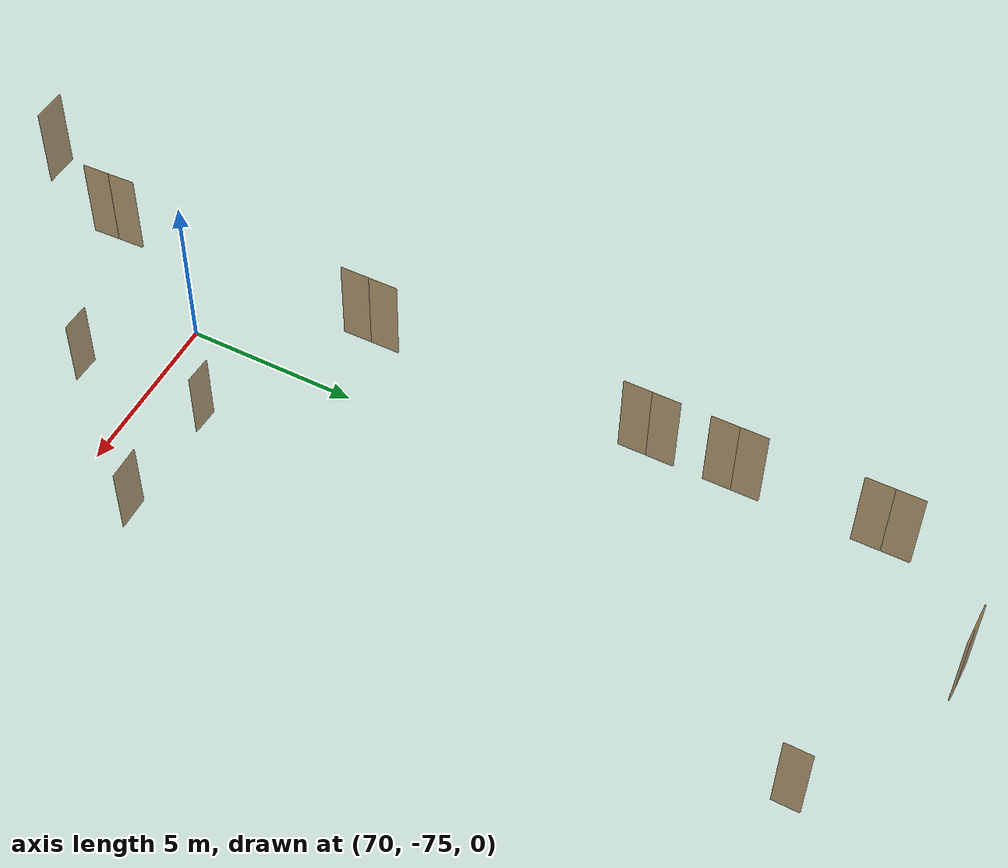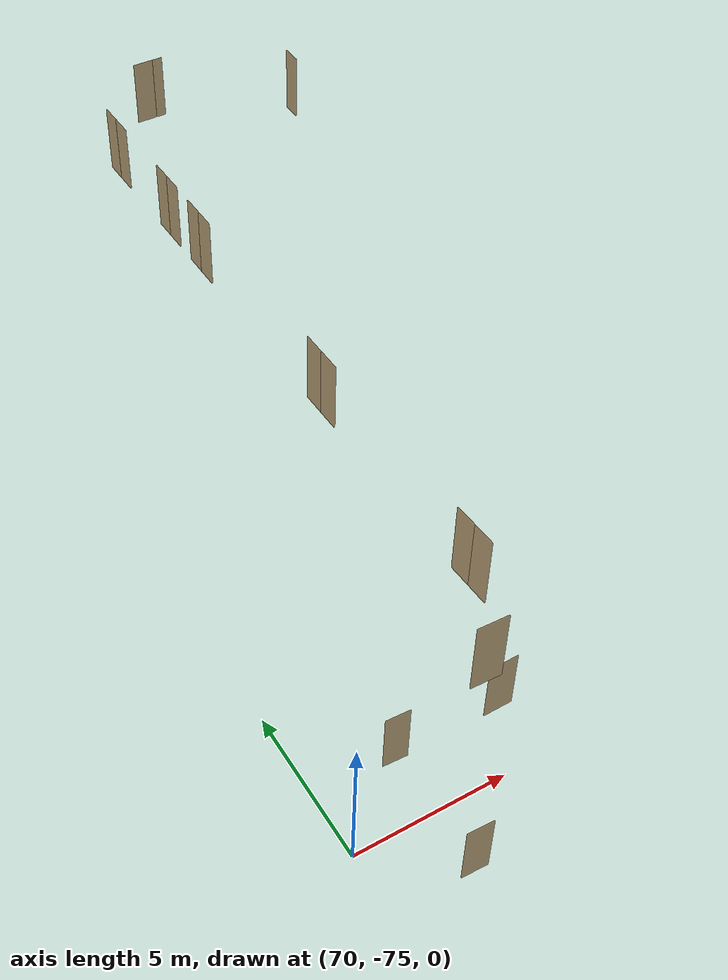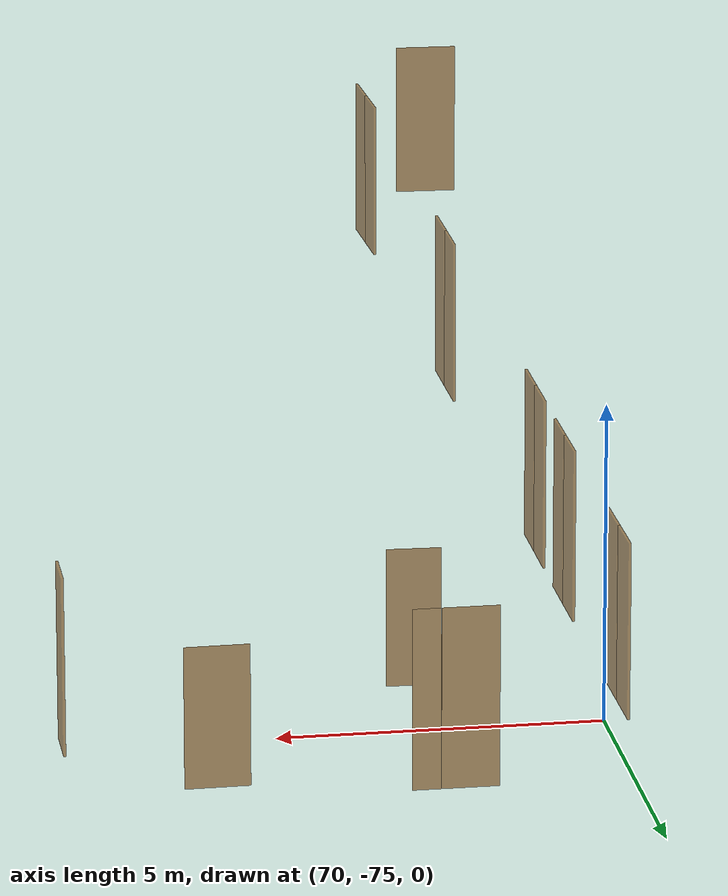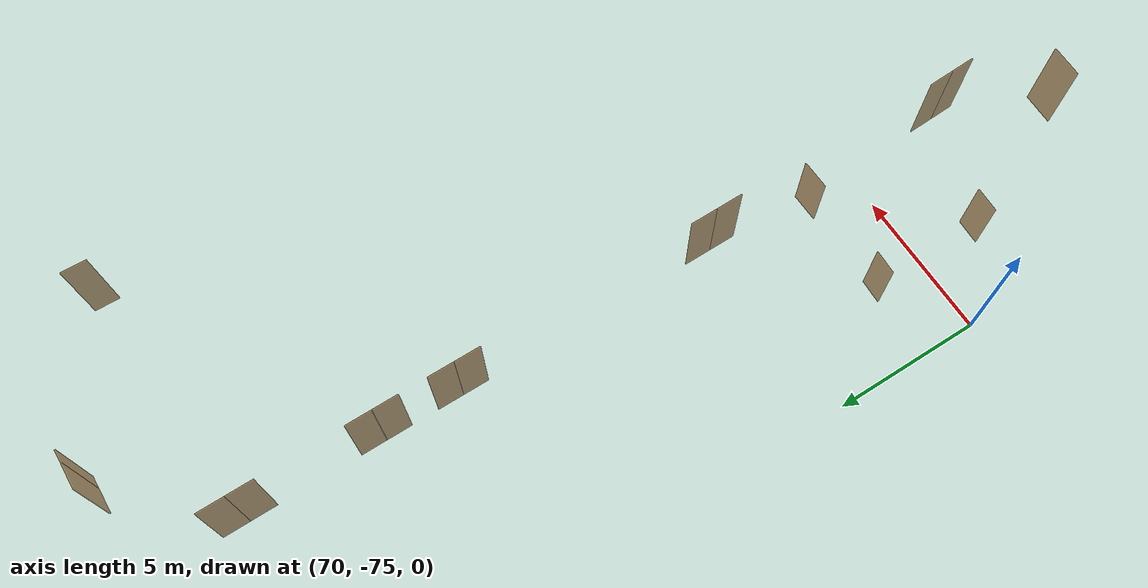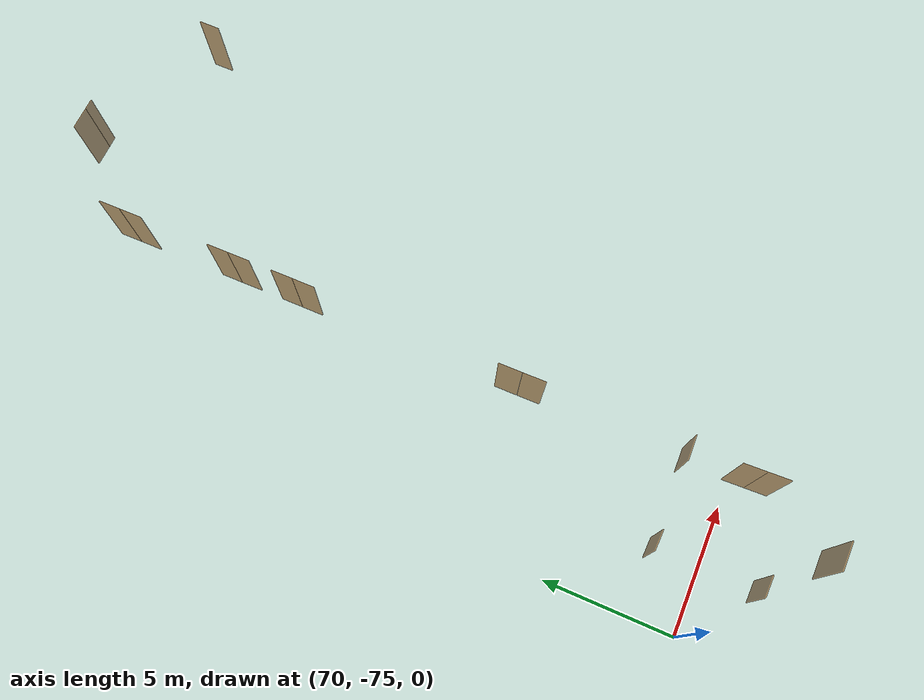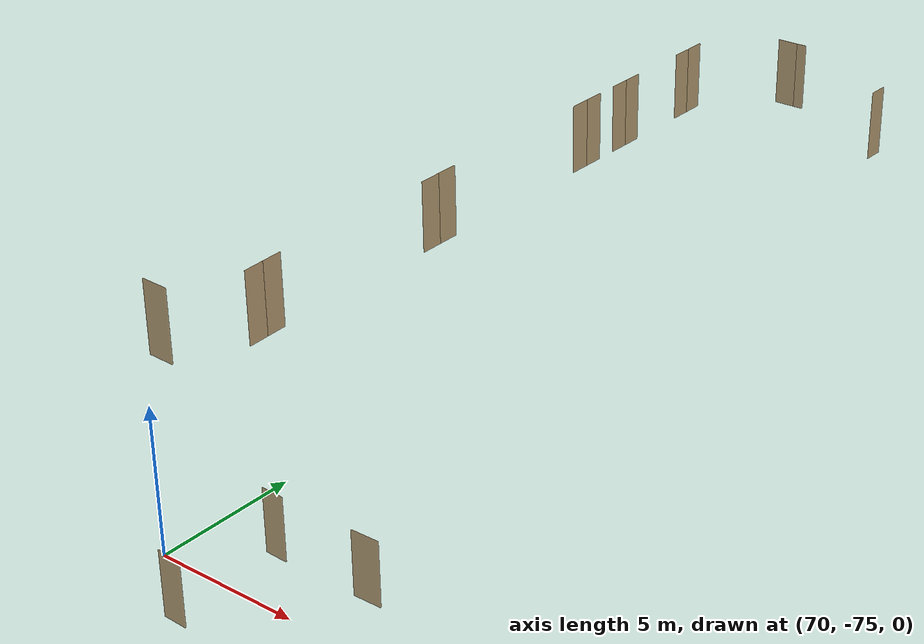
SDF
<sdf version="1.7">
 <world name="sim_world">
  <model name="can6">
   <pose>72.58942125200996 -77.0033771156696 0.0 0 0 3.103509085440403</pose>
   <link name="right">
    <pose>0 0 1.11 0 0 0</pose>
    <visual name="right_visual">
     <geometry><box><size>0.845366502185707 0.03 2.2</size></box></geometry>
     <material>
      <ambient>0.5 0.25 0 0.6</ambient>
      <diffuse>0.5 0.25 0 0.6</diffuse>
      <pbr><metal><metalness>0.0</metalness></metal></pbr>
     </material>
    </visual>
    <collision name="right_collision">
     <geometry><box><size>0.845366502185707 0.03 2.2</size></box></geometry>
     <surface><contact><collide_bitmask>0x02</collide_bitmask></contact></surface>
    </collision>
    <inertial>
     <mass>50.0</mass>
     <inertia><ixx>20.17041666666667</ixx><iyy>23.144352179240407</iyy><izz>2.981435512573737</izz></inertia>
    </inertial>
   </link>
   <joint name="right_joint" type="revolute">
    <parent>world</parent>
    <child>right</child>
    <axis><xyz>0 0 1</xyz><limit><lower>0</lower><upper>1.57</upper></limit></axis>
    <pose>0.4276832510928535 0 0 0 0 0</pose>
   </joint>
   <plugin name="register_component" filename="libregister_component.so">
    <component name="Door">
     <v_max_door>0.5</v_max_door>
     <a_max_door>0.3</a_max_door>
     <a_nom_door>0.15</a_nom_door>
     <dx_min_door>0.01</dx_min_door>
     <f_max_door>500.0</f_max_door>
     <ros_interface>true</ros_interface>
     <door name="can6" type="SwingDoor" left_joint_name="empty_joint" right_joint_name="right_joint"/>
    </component>
   </plugin>
  </model>
  <model name="can2">
   <pose>72.59327055056514 -73.06088737912995 0.0 0 0 3.0966947153122124</pose>
   <link name="right">
    <pose>0 0 1.11 0 0 0</pose>
    <visual name="right_visual">
     <geometry><box><size>0.8106265710402226 0.03 2.2</size></box></geometry>
     <material>
      <ambient>0.5 0.25 0 0.6</ambient>
      <diffuse>0.5 0.25 0 0.6</diffuse>
      <pbr><metal><metalness>0.0</metalness></metal></pbr>
     </material>
    </visual>
    <collision name="right_collision">
     <geometry><box><size>0.8106265710402226 0.03 2.2</size></box></geometry>
     <surface><contact><collide_bitmask>0x02</collide_bitmask></contact></surface>
    </collision>
    <inertial>
     <mass>50.0</mass>
     <inertia><ixx>20.17041666666667</ixx><iyy>22.904647656985127</iyy><izz>2.741730990318455</izz></inertia>
    </inertial>
   </link>
   <joint name="right_joint" type="revolute">
    <parent>world</parent>
    <child>right</child>
    <axis><xyz>0 0 -1</xyz><limit><lower>0</lower><upper>1.57</upper></limit></axis>
    <pose>0.4103132855201113 0 0 0 0 0</pose>
   </joint>
   <plugin name="register_component" filename="libregister_component.so">
    <component name="Door">
     <v_max_door>0.5</v_max_door>
     <a_max_door>0.3</a_max_door>
     <a_nom_door>0.15</a_nom_door>
     <dx_min_door>0.01</dx_min_door>
     <f_max_door>500.0</f_max_door>
     <ros_interface>true</ros_interface>
     <door name="can2" type="SwingDoor" left_joint_name="empty_joint" right_joint_name="right_joint"/>
    </component>
   </plugin>
  </model>
  <model name="can3">
   <pose>76.12580437975446 -73.07010100628392 0.0 0 0 0.018498442462925417</pose>
   <link name="right">
    <pose>0 0 1.11 0 0 0</pose>
    <visual name="right_visual">
     <geometry><box><size>0.9849950738526125 0.03 2.2</size></box></geometry>
     <material>
      <ambient>0.5 0.25 0 0.6</ambient>
      <diffuse>0.5 0.25 0 0.6</diffuse>
      <pbr><metal><metalness>0.0</metalness></metal></pbr>
     </material>
    </visual>
    <collision name="right_collision">
     <geometry><box><size>0.9849950738526125 0.03 2.2</size></box></geometry>
     <surface><contact><collide_bitmask>0x02</collide_bitmask></contact></surface>
    </collision>
    <inertial>
     <mass>50.0</mass>
     <inertia><ixx>20.17041666666667</ixx><iyy>24.209230397974643</iyy><izz>4.046313731307974</izz></inertia>
    </inertial>
   </link>
   <joint name="right_joint" type="revolute">
    <parent>world</parent>
    <child>right</child>
    <axis><xyz>0 0 -1</xyz><limit><lower>0</lower><upper>1.57</upper></limit></axis>
    <pose>0.49749753692630627 0 0 0 0 0</pose>
   </joint>
   <plugin name="register_component" filename="libregister_component.so">
    <component name="Door">
     <v_max_door>0.5</v_max_door>
     <a_max_door>0.3</a_max_door>
     <a_nom_door>0.15</a_nom_door>
     <dx_min_door>0.01</dx_min_door>
     <f_max_door>500.0</f_max_door>
     <ros_interface>true</ros_interface>
     <door name="can3" type="SwingDoor" left_joint_name="empty_joint" right_joint_name="right_joint"/>
    </component>
   </plugin>
  </model>
  <model name="TD0104AI">
   <pose>73.76116416509116 -66.85944655126693 8.0 0 0 1.5805418816825874</pose>
   <link name="right">
    <pose>0.3619261226570596 0 1.11 0 0 0</pose>
    <visual name="right_visual">
     <geometry><box><size>0.7138522453141192 0.03 2.2</size></box></geometry>
     <material>
      <ambient>0.5 0.25 0 0.6</ambient>
      <diffuse>0.5 0.25 0 0.6</diffuse>
      <pbr><metal><metalness>0.0</metalness></metal></pbr>
     </material>
    </visual>
    <collision name="right_collision">
     <geometry><box><size>0.7138522453141192 0.03 2.2</size></box></geometry>
     <surface><contact><collide_bitmask>0x02</collide_bitmask></contact></surface>
    </collision>
    <inertial>
     <mass>50.0</mass>
     <inertia><ixx>20.17041666666667</ixx><iyy>22.289937617250047</iyy><izz>2.127020950583373</izz></inertia>
    </inertial>
   </link>
   <joint name="right_joint" type="revolute">
    <parent>world</parent>
    <child>right</child>
    <axis><xyz>0 0 -1</xyz><limit><lower>0</lower><upper>1.57</upper></limit></axis>
    <pose>0.3619261226570596 0 0 0 0 0</pose>
   </joint>
   <link name="left">
    <pose>-0.3619261226570596 0 1.11 0 0 0</pose>
    <visual name="left_visual">
     <geometry><box><size>0.7138522453141192 0.03 2.2</size></box></geometry>
     <material>
      <ambient>0.5 0.25 0 0.6</ambient>
      <diffuse>0.5 0.25 0 0.6</diffuse>
      <pbr><metal><metalness>0.0</metalness></metal></pbr>
     </material>
    </visual>
    <collision name="left_collision">
     <geometry><box><size>0.7138522453141192 0.03 2.2</size></box></geometry>
     <surface><contact><collide_bitmask>0x02</collide_bitmask></contact></surface>
    </collision>
    <inertial>
     <mass>50.0</mass>
     <inertia><ixx>20.17041666666667</ixx><iyy>22.289937617250047</iyy><izz>2.127020950583373</izz></inertia>
    </inertial>
   </link>
   <joint name="left_joint" type="revolute">
    <parent>world</parent>
    <child>left</child>
    <axis><xyz>0 0 -1</xyz><limit><lower>-1.57</lower><upper>0</upper></limit></axis>
    <pose>-0.3619261226570596 0 0 0 0 0</pose>
   </joint>
   <plugin name="register_component" filename="libregister_component.so">
    <component name="Door">
     <v_max_door>0.5</v_max_door>
     <a_max_door>0.3</a_max_door>
     <a_nom_door>0.15</a_nom_door>
     <dx_min_door>0.01</dx_min_door>
     <f_max_door>500.0</f_max_door>
     <ros_interface>true</ros_interface>
     <door name="TD0104AI" type="DoubleSwingDoor" left_joint_name="left_joint" right_joint_name="right_joint"/>
    </component>
   </plugin>
  </model>
  <model name="TD0105AI">
   <pose>73.78379682080418 -73.91818855977962 8.0 0 0 1.6134941406274728</pose>
   <link name="right">
    <pose>0.3394167036928094 0 1.11 0 0 0</pose>
    <visual name="right_visual">
     <geometry><box><size>0.6688334073856188 0.03 2.2</size></box></geometry>
     <material>
      <ambient>0.5 0.25 0 0.6</ambient>
      <diffuse>0.5 0.25 0 0.6</diffuse>
      <pbr><metal><metalness>0.0</metalness></metal></pbr>
     </material>
    </visual>
    <collision name="right_collision">
     <geometry><box><size>0.6688334073856188 0.03 2.2</size></box></geometry>
     <surface><contact><collide_bitmask>0x02</collide_bitmask></contact></surface>
    </collision>
    <inertial>
     <mass>50.0</mass>
     <inertia><ixx>20.17041666666667</ixx><iyy>22.03057552847941</iyy><izz>1.8676588618127383</izz></inertia>
    </inertial>
   </link>
   <joint name="right_joint" type="revolute">
    <parent>world</parent>
    <child>right</child>
    <axis><xyz>0 0 -1</xyz><limit><lower>0</lower><upper>1.57</upper></limit></axis>
    <pose>0.3394167036928094 0 0 0 0 0</pose>
   </joint>
   <link name="left">
    <pose>-0.3394167036928094 0 1.11 0 0 0</pose>
    <visual name="left_visual">
     <geometry><box><size>0.6688334073856188 0.03 2.2</size></box></geometry>
     <material>
      <ambient>0.5 0.25 0 0.6</ambient>
      <diffuse>0.5 0.25 0 0.6</diffuse>
      <pbr><metal><metalness>0.0</metalness></metal></pbr>
     </material>
    </visual>
    <collision name="left_collision">
     <geometry><box><size>0.6688334073856188 0.03 2.2</size></box></geometry>
     <surface><contact><collide_bitmask>0x02</collide_bitmask></contact></surface>
    </collision>
    <inertial>
     <mass>50.0</mass>
     <inertia><ixx>20.17041666666667</ixx><iyy>22.03057552847941</iyy><izz>1.8676588618127383</izz></inertia>
    </inertial>
   </link>
   <joint name="left_joint" type="revolute">
    <parent>world</parent>
    <child>left</child>
    <axis><xyz>0 0 -1</xyz><limit><lower>-1.57</lower><upper>0</upper></limit></axis>
    <pose>-0.3394167036928094 0 0 0 0 0</pose>
   </joint>
   <plugin name="register_component" filename="libregister_component.so">
    <component name="Door">
     <v_max_door>0.5</v_max_door>
     <a_max_door>0.3</a_max_door>
     <a_nom_door>0.15</a_nom_door>
     <dx_min_door>0.01</dx_min_door>
     <f_max_door>500.0</f_max_door>
     <ros_interface>true</ros_interface>
     <door name="TD0105AI" type="DoubleSwingDoor" left_joint_name="left_joint" right_joint_name="right_joint"/>
    </component>
   </plugin>
  </model>
  <model name="TD0118CP4">
   <pose>72.5011613042312 -76.49643048348364 8.0 0 0 -0.035525531201685036</pose>
   <link name="right">
    <pose>0 0 1.11 0 0 0</pose>
    <visual name="right_visual">
     <geometry><box><size>0.8665398344788962 0.03 2.2</size></box></geometry>
     <material>
      <ambient>0.5 0.25 0 0.6</ambient>
      <diffuse>0.5 0.25 0 0.6</diffuse>
      <pbr><metal><metalness>0.0</metalness></metal></pbr>
     </material>
    </visual>
    <collision name="right_collision">
     <geometry><box><size>0.8665398344788962 0.03 2.2</size></box></geometry>
     <surface><contact><collide_bitmask>0x02</collide_bitmask></contact></surface>
    </collision>
    <inertial>
     <mass>50.0</mass>
     <inertia><ixx>20.17041666666667</ixx><iyy>23.295380353077974</iyy><izz>3.1324636864113033</izz></inertia>
    </inertial>
   </link>
   <joint name="right_joint" type="revolute">
    <parent>world</parent>
    <child>right</child>
    <axis><xyz>0 0 1</xyz><limit><lower>0</lower><upper>1.57</upper></limit></axis>
    <pose>0.4382699172394481 0 0 0 0 0</pose>
   </joint>
   <plugin name="register_component" filename="libregister_component.so">
    <component name="Door">
     <v_max_door>0.5</v_max_door>
     <a_max_door>0.3</a_max_door>
     <a_nom_door>0.15</a_nom_door>
     <dx_min_door>0.01</dx_min_door>
     <f_max_door>500.0</f_max_door>
     <ros_interface>true</ros_interface>
     <door name="TD0118CP4" type="SwingDoor" left_joint_name="empty_joint" right_joint_name="right_joint"/>
    </component>
   </plugin>
  </model>
  <model name="TD0103AI">
   <pose>73.76084966579683 -59.77567315356594 8.0 0 0 1.5729614221660908</pose>
   <link name="right">
    <pose>0.34471092342329807 0 1.11 0 0 0</pose>
    <visual name="right_visual">
     <geometry><box><size>0.6794218468465961 0.03 2.2</size></box></geometry>
     <material>
      <ambient>0.5 0.25 0 0.6</ambient>
      <diffuse>0.5 0.25 0 0.6</diffuse>
      <pbr><metal><metalness>0.0</metalness></metal></pbr>
     </material>
    </visual>
    <collision name="right_collision">
     <geometry><box><size>0.6794218468465961 0.03 2.2</size></box></geometry>
     <surface><contact><collide_bitmask>0x02</collide_bitmask></contact></surface>
    </collision>
    <inertial>
     <mass>50.0</mass>
     <inertia><ixx>20.17041666666667</ixx><iyy>22.09005852488517</iyy><izz>1.927141858218498</izz></inertia>
    </inertial>
   </link>
   <joint name="right_joint" type="revolute">
    <parent>world</parent>
    <child>right</child>
    <axis><xyz>0 0 -1</xyz><limit><lower>0</lower><upper>1.57</upper></limit></axis>
    <pose>0.34471092342329807 0 0 0 0 0</pose>
   </joint>
   <link name="left">
    <pose>-0.34471092342329807 0 1.11 0 0 0</pose>
    <visual name="left_visual">
     <geometry><box><size>0.6794218468465961 0.03 2.2</size></box></geometry>
     <material>
      <ambient>0.5 0.25 0 0.6</ambient>
      <diffuse>0.5 0.25 0 0.6</diffuse>
      <pbr><metal><metalness>0.0</metalness></metal></pbr>
     </material>
    </visual>
    <collision name="left_collision">
     <geometry><box><size>0.6794218468465961 0.03 2.2</size></box></geometry>
     <surface><contact><collide_bitmask>0x02</collide_bitmask></contact></surface>
    </collision>
    <inertial>
     <mass>50.0</mass>
     <inertia><ixx>20.17041666666667</ixx><iyy>22.09005852488517</iyy><izz>1.927141858218498</izz></inertia>
    </inertial>
   </link>
   <joint name="left_joint" type="revolute">
    <parent>world</parent>
    <child>left</child>
    <axis><xyz>0 0 -1</xyz><limit><lower>-1.57</lower><upper>0</upper></limit></axis>
    <pose>-0.34471092342329807 0 0 0 0 0</pose>
   </joint>
   <plugin name="register_component" filename="libregister_component.so">
    <component name="Door">
     <v_max_door>0.5</v_max_door>
     <a_max_door>0.3</a_max_door>
     <a_nom_door>0.15</a_nom_door>
     <dx_min_door>0.01</dx_min_door>
     <f_max_door>500.0</f_max_door>
     <ros_interface>true</ros_interface>
     <door name="TD0103AI" type="DoubleSwingDoor" left_joint_name="left_joint" right_joint_name="right_joint"/>
    </component>
   </plugin>
  </model>
  <model name="TD0102AI">
   <pose>73.75508046016452 -57.70424779287917 8.0 0 0 1.5769013709534752</pose>
   <link name="right">
    <pose>0.33995202967899124 0 1.11 0 0 0</pose>
    <visual name="right_visual">
     <geometry><box><size>0.6699040593579825 0.03 2.2</size></box></geometry>
     <material>
      <ambient>0.5 0.25 0 0.6</ambient>
      <diffuse>0.5 0.25 0 0.6</diffuse>
      <pbr><metal><metalness>0.0</metalness></metal></pbr>
     </material>
    </visual>
    <collision name="right_collision">
     <geometry><box><size>0.6699040593579825 0.03 2.2</size></box></geometry>
     <surface><contact><collide_bitmask>0x02</collide_bitmask></contact></surface>
    </collision>
    <inertial>
     <mass>50.0</mass>
     <inertia><ixx>20.17041666666667</ixx><iyy>22.03654770310127</iyy><izz>1.8736310364345974</izz></inertia>
    </inertial>
   </link>
   <joint name="right_joint" type="revolute">
    <parent>world</parent>
    <child>right</child>
    <axis><xyz>0 0 -1</xyz><limit><lower>0</lower><upper>1.57</upper></limit></axis>
    <pose>0.33995202967899124 0 0 0 0 0</pose>
   </joint>
   <link name="left">
    <pose>-0.33995202967899124 0 1.11 0 0 0</pose>
    <visual name="left_visual">
     <geometry><box><size>0.6699040593579825 0.03 2.2</size></box></geometry>
     <material>
      <ambient>0.5 0.25 0 0.6</ambient>
      <diffuse>0.5 0.25 0 0.6</diffuse>
      <pbr><metal><metalness>0.0</metalness></metal></pbr>
     </material>
    </visual>
    <collision name="left_collision">
     <geometry><box><size>0.6699040593579825 0.03 2.2</size></box></geometry>
     <surface><contact><collide_bitmask>0x02</collide_bitmask></contact></surface>
    </collision>
    <inertial>
     <mass>50.0</mass>
     <inertia><ixx>20.17041666666667</ixx><iyy>22.03654770310127</iyy><izz>1.8736310364345974</izz></inertia>
    </inertial>
   </link>
   <joint name="left_joint" type="revolute">
    <parent>world</parent>
    <child>left</child>
    <axis><xyz>0 0 -1</xyz><limit><lower>-1.57</lower><upper>0</upper></limit></axis>
    <pose>-0.33995202967899124 0 0 0 0 0</pose>
   </joint>
   <plugin name="register_component" filename="libregister_component.so">
    <component name="Door">
     <v_max_door>0.5</v_max_door>
     <a_max_door>0.3</a_max_door>
     <a_nom_door>0.15</a_nom_door>
     <dx_min_door>0.01</dx_min_door>
     <f_max_door>500.0</f_max_door>
     <ros_interface>true</ros_interface>
     <door name="TD0102AI" type="DoubleSwingDoor" left_joint_name="left_joint" right_joint_name="right_joint"/>
    </component>
   </plugin>
  </model>
  <model name="TD0101AO1">
   <pose>73.73628791282093 -54.16554616453085 8.0 0 0 1.5796660583711413</pose>
   <link name="right">
    <pose>0.3480341851671836 0 1.11 0 0 0</pose>
    <visual name="right_visual">
     <geometry><box><size>0.6860683703343672 0.03 2.2</size></box></geometry>
     <material>
      <ambient>0.5 0.25 0 0.6</ambient>
      <diffuse>0.5 0.25 0 0.6</diffuse>
      <pbr><metal><metalness>0.0</metalness></metal></pbr>
     </material>
    </visual>
    <collision name="right_collision">
     <geometry><box><size>0.6860683703343672 0.03 2.2</size></box></geometry>
     <surface><contact><collide_bitmask>0x02</collide_bitmask></contact></surface>
    </collision>
    <inertial>
     <mass>50.0</mass>
     <inertia><ixx>20.17041666666667</ixx><iyy>22.1278742032219</iyy><izz>1.9649575365552268</izz></inertia>
    </inertial>
   </link>
   <joint name="right_joint" type="revolute">
    <parent>world</parent>
    <child>right</child>
    <axis><xyz>0 0 -1</xyz><limit><lower>0</lower><upper>1.57</upper></limit></axis>
    <pose>0.3480341851671836 0 0 0 0 0</pose>
   </joint>
   <link name="left">
    <pose>-0.3480341851671836 0 1.11 0 0 0</pose>
    <visual name="left_visual">
     <geometry><box><size>0.6860683703343672 0.03 2.2</size></box></geometry>
     <material>
      <ambient>0.5 0.25 0 0.6</ambient>
      <diffuse>0.5 0.25 0 0.6</diffuse>
      <pbr><metal><metalness>0.0</metalness></metal></pbr>
     </material>
    </visual>
    <collision name="left_collision">
     <geometry><box><size>0.6860683703343672 0.03 2.2</size></box></geometry>
     <surface><contact><collide_bitmask>0x02</collide_bitmask></contact></surface>
    </collision>
    <inertial>
     <mass>50.0</mass>
     <inertia><ixx>20.17041666666667</ixx><iyy>22.1278742032219</iyy><izz>1.9649575365552268</izz></inertia>
    </inertial>
   </link>
   <joint name="left_joint" type="revolute">
    <parent>world</parent>
    <child>left</child>
    <axis><xyz>0 0 -1</xyz><limit><lower>-1.57</lower><upper>0</upper></limit></axis>
    <pose>-0.3480341851671836 0 0 0 0 0</pose>
   </joint>
   <plugin name="register_component" filename="libregister_component.so">
    <component name="Door">
     <v_max_door>0.5</v_max_door>
     <a_max_door>0.3</a_max_door>
     <a_nom_door>0.15</a_nom_door>
     <dx_min_door>0.01</dx_min_door>
     <f_max_door>500.0</f_max_door>
     <ros_interface>true</ros_interface>
     <door name="TD0101AO1" type="DoubleSwingDoor" left_joint_name="left_joint" right_joint_name="right_joint"/>
    </component>
   </plugin>
  </model>
  <model name="TD0111AO">
   <pose>76.117156318815 -51.53420214612608 8.0 0 0 0.00017906532679788667</pose>
   <link name="right">
    <pose>0.3436496657607462 0 1.11 0 0 0</pose>
    <visual name="right_visual">
     <geometry><box><size>0.3336496657607462 0.03 2.2</size></box></geometry>
     <material>
      <ambient>0.5 0.25 0 0.6</ambient>
      <diffuse>0.5 0.25 0 0.6</diffuse>
      <pbr><metal><metalness>0.0</metalness></metal></pbr>
     </material>
    </visual>
    <collision name="right_collision">
     <geometry><box><size>0.3336496657607462 0.03 2.2</size></box></geometry>
     <surface><contact><collide_bitmask>0x02</collide_bitmask></contact></surface>
    </collision>
    <inertial>
     <mass>50.0</mass>
     <inertia><ixx>20.17041666666667</ixx><iyy>20.63050874775941</iyy><izz>0.4675920810927402</izz></inertia>
    </inertial>
   </link>
   <joint name="right_joint" type="revolute">
    <parent>world</parent>
    <child>right</child>
    <axis><xyz>0 0 -1</xyz><limit><lower>0</lower><upper>1.57</upper></limit></axis>
    <pose>0.1718248328803731 0 0 0 0 0</pose>
   </joint>
   <link name="left">
    <pose>-0.1718248328803731 0 1.11 0 0 0</pose>
    <visual name="left_visual">
     <geometry><box><size>0.6772993315214924 0.03 2.2</size></box></geometry>
     <material>
      <ambient>0.5 0.25 0 0.6</ambient>
      <diffuse>0.5 0.25 0 0.6</diffuse>
      <pbr><metal><metalness>0.0</metalness></metal></pbr>
     </material>
    </visual>
    <collision name="left_collision">
     <geometry><box><size>0.6772993315214924 0.03 2.2</size></box></geometry>
     <surface><contact><collide_bitmask>0x02</collide_bitmask></contact></surface>
    </collision>
    <inertial>
     <mass>50.0</mass>
     <inertia><ixx>20.17041666666667</ixx><iyy>22.07805993533109</iyy><izz>1.9151432686644185</izz></inertia>
    </inertial>
   </link>
   <joint name="left_joint" type="revolute">
    <parent>world</parent>
    <child>left</child>
    <axis><xyz>0 0 -1</xyz><limit><lower>-1.57</lower><upper>0</upper></limit></axis>
    <pose>-0.3436496657607462 0 0 0 0 0</pose>
   </joint>
   <plugin name="register_component" filename="libregister_component.so">
    <component name="Door">
     <v_max_door>0.5</v_max_door>
     <a_max_door>0.3</a_max_door>
     <a_nom_door>0.15</a_nom_door>
     <dx_min_door>0.01</dx_min_door>
     <f_max_door>500.0</f_max_door>
     <ros_interface>true</ros_interface>
     <door name="TD0111AO" type="DoubleSwingDoor" left_joint_name="left_joint" right_joint_name="right_joint"/>
    </component>
   </plugin>
  </model>
  <model name="TD0101AO2">
   <pose>80.46225319380048 -53.56661356564936 8.0 0 0 -1.5821062922475102</pose>
   <link name="right">
    <pose>0 0 1.11 0 0 0</pose>
    <visual name="right_visual">
     <geometry><box><size>0.6464568341391322 0.03 2.2</size></box></geometry>
     <material>
      <ambient>0.5 0.25 0 0.6</ambient>
      <diffuse>0.5 0.25 0 0.6</diffuse>
      <pbr><metal><metalness>0.0</metalness></metal></pbr>
     </material>
    </visual>
    <collision name="right_collision">
     <geometry><box><size>0.6464568341391322 0.03 2.2</size></box></geometry>
     <surface><contact><collide_bitmask>0x02</collide_bitmask></contact></surface>
    </collision>
    <inertial>
     <mass>50.0</mass>
     <inertia><ixx>20.17041666666667</ixx><iyy>21.907943493354963</iyy><izz>1.74502682668829</izz></inertia>
    </inertial>
   </link>
   <joint name="right_joint" type="revolute">
    <parent>world</parent>
    <child>right</child>
    <axis><xyz>0 0 1</xyz><limit><lower>0</lower><upper>1.57</upper></limit></axis>
    <pose>0.3282284170695661 0 0 0 0 0</pose>
   </joint>
   <plugin name="register_component" filename="libregister_component.so">
    <component name="Door">
     <v_max_door>0.5</v_max_door>
     <a_max_door>0.3</a_max_door>
     <a_nom_door>0.15</a_nom_door>
     <dx_min_door>0.01</dx_min_door>
     <f_max_door>500.0</f_max_door>
     <ros_interface>true</ros_interface>
     <door name="TD0101AO2" type="SwingDoor" left_joint_name="empty_joint" right_joint_name="right_joint"/>
    </component>
   </plugin>
  </model>
 </world>
</sdf>
